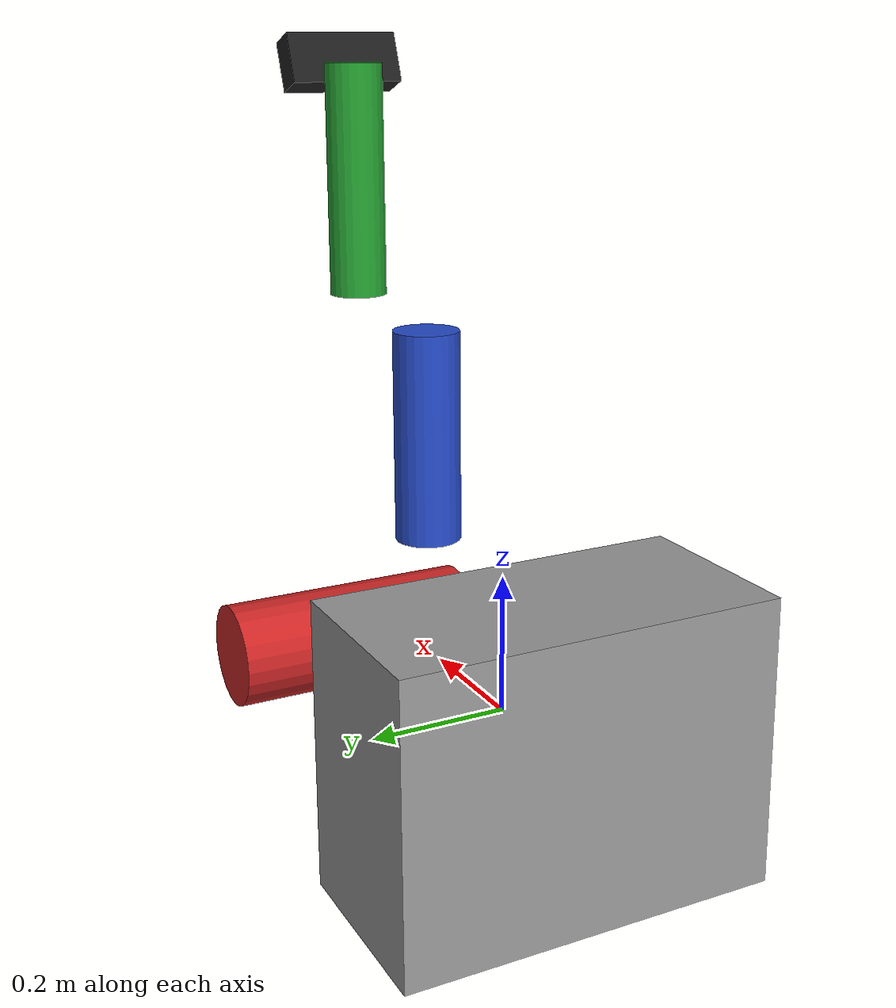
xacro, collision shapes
<?xml version="1.0"?>
<robot xmlns:xacro="http://www.ros.org/wiki/xacro" name="MROV">
    <xacro:arg name="initial_positions_file" default="initial_positions.yaml" />

    <!-- Import MROV urdf file -->
    <xacro:include filename="$(find roboforge_description)/urdf/MROV.urdf" />

    <!-- Import control_xacro -->
    <xacro:include filename="MROV.ros2_control.xacro" />

    <xacro:MROV_ros2_control name="FakeSystem" initial_positions_file="$(arg initial_positions_file)"/>

</robot>

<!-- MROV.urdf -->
<robot name="MROV">

  <link name="world"/>

  <joint name="world_to_base" type="fixed">
    <parent link="world"/>
    <child link="Base_Link"/>
    <origin xyz="0 0 0" rpy="1.5708 0 1.5708"/>
  </joint>

  <link name="Base_Link">
    <inertial>
      <origin xyz="0.0001356345924423959 -0.0027958209988345442 -0.17742579705845535" rpy="0 0 0"/>
      <mass value="73.72720579216754"/>
      <inertia ixx="6.080008408618806" iyy="7.448494266859929" izz="2.421318329739703"
               ixy="0.0004522836114217125" iyz="-0.19161922081135851" ixz="0.0002600319584258763"/>
    </inertial>
   <visual name="Base_Link_visual">
  <origin xyz="0 0 0" rpy="0 0 0"/>
  <geometry>
    <mesh filename="file:///home/instillmotion/roboforge_ws/src/roboforge_description/meshes/Base_Link.stl" scale="0.001 0.001 0.001"/>
  </geometry>
</visual>
    <collision name="Base_Link_collision">
      <origin xyz="0 0 -0.12" rpy="0 0 0"/>
      <geometry>
        <box size="0.55 0.42 0.28"/>
      </geometry>
    </collision>
  </link>

  <link name="Link_1">
    <inertial>
      <origin xyz="0.18608299280563856 -0.09930637280922637 0.000140804150153393" rpy="0 0 0"/>
      <mass value="14.482580124533875"/>
      <inertia ixx="0.031605126792847216" iyy="0.2299436371920638" izz="0.2445269438456591"
               ixy="0.0320391397033634" iyz="2.4257608514779982e-05" ixz="-0.0001090383327939648"/>
    </inertial>
    <visual name="Link_1_visual">
      <origin xyz="1.7308998350243355e-09 0.08224999771294594 0.13000000163195125"
              rpy="3.1415926535897927 4.705543112124352e-16 1.2374103657084265e-15"/>
      <geometry>

far from the base

        <mesh filename="file:///home/instillmotion/roboforge_ws/src/roboforge_description/meshes/Link_1.stl" scale="0.001 0.001 0.001"/>
      </geometry>
    </visual>
    <collision name="Link_1_collision">
      <origin xyz="0.18 -0.02 0.0" rpy="0 1.5708 0"/>
      <geometry>
        <cylinder radius="0.07" length="0.34"/>
      </geometry>
    </collision>
  </link>

  <link name="Link_2">
    <inertial>
      <origin xyz="0.15291121542347832 0.10745667780920695 0.05028337243925731" rpy="0 0 0"/>
      <mass value="4.795520335939489"/>
      <inertia ixx="0.0661479704368495" iyy="0.0987819411507154" izz="0.1373437951340477"
               ixy="-0.058616699505220804" iyz="0.0003083336265996855" ixz="0.0004530731777151773"/>
    </inertial>
    <visual name="Link_2_visual">
      <origin xyz="-0.19324999771294718 -0.13000000163195025 0.050000001730899905"
              rpy="-1.5707963267948972 -1.570796326794893 0"/>
      <geometry>
        <mesh filename="file:///home/instillmotion/roboforge_ws/src/roboforge_description/meshes/Link_2.stl" scale="0.001 0.001 0.001"/>
      </geometry>
    </visual>
    <collision name="Link_2_collision">

far from the base

      <origin xyz="0.15 0.11 0.05" rpy="0 1.5708 0"/>
      <geometry>
        <cylinder radius="0.05" length="0.32"/>
      </geometry>
    </collision>
  </link>

  <link name="Link_3">
    <inertial>
      <origin xyz="0.21478168798956143 0.08096195232708539 0.05800376599428704" rpy="0 0 0"/>
      <mass value="5.960058511721182"/>
      <inertia ixx="0.013665487899860107" iyy="0.04778278915543899" izz="0.052848731805561044"
               ixy="-0.015155801039595795" iyz="-4.1452007907544046e-08" ixz="-1.0152361179722894e-07"/>
    </inertial>
    <visual name="Link_3_visual">
      <origin xyz="-0.4884264877129772 -0.4161745016319071 0.05800000173089491"
              rpy="-1.5707963267948972 -1.57079632679477 0"/>
      <geometry>
        <mesh filename="file:///home/instillmotion/roboforge_ws/src/roboforge_description/meshes/Link_3.stl" scale="0.001 0.001 0.001"/>
      </geometry>
    </visual>
    <collision name="Link_3_collision">
      <origin xyz="0.21 0.08 0.058" rpy="0 1.5708 0"/>
      <geometry>
        <cylinder radius="0.045" length="0.36"/>
      </geometry>
    </collision>
  </link>

  <link name="Link_4">
    <inertial>
      <origin xyz="0.001587676837711417 0.07007455299123663 -0.013540153217061146" rpy="0 0 0"/>
      <mass value="0.7115348170256092"/>
      <inertia ixx="0.002016753973613117" iyy="0.00047510558923077173" izz="0.002089634028742328"
               ixy="-9.866272179652854e-05" iyz="0.00038810256430279273" ixz="-8.219098690177765e-06"/>
    </inertial>
    <visual name="Link_4_visual">
      <origin xyz="1.7309060562631373e-09 -0.948946743359802 -0.21681783919339118"
              rpy="-0.3610242625979725 1.0823375344026993e-13 -1.1411217809271123e-16"/>
      <geometry>
        <mesh filename="file:///home/instillmotion/roboforge_ws/src/roboforge_description/meshes/Link_4.stl" scale="0.001 0.001 0.001"/>
      </geometry>
    </visual>
    <collision name="Link_4_collision">
      <origin xyz="0.0 0.07 -0.01" rpy="0 0 0"/>
      <geometry>
        <box size="0.18 0.08 0.05"/>
      </geometry>
    </collision>
  </link>

  <joint name="Base_Link_Revolute-11" type="revolute">
    <origin xyz="-1.7308990302514204e-09 0.08399999771294589 0.1300000016319511"
            rpy="3.141592653589793 4.705543112124359e-16 1.2374103657084236e-15"/>
    <parent link="Base_Link"/>
    <child link="Link_1"/>
    <axis xyz="1.3738014789193181e-31 -1.0 0.0"/>
    <limit lower="-3.141593" upper="3.141593" effort="1000000" velocity="1000000"/>
  </joint>

  <joint name="Link_1_Revolute-12" type="revolute">
    <origin xyz="-0.0506 -0.11100000000000002 0.0"
            rpy="-1.5707963267948952 1.232595164407831e-32 -1.5707963267948966"/>
    <parent link="Link_1"/>
    <child link="Link_2"/>
    <axis xyz="-4.373750508443129e-32 1.38365925427228e-15 1.0"/>
    <limit lower="-1.48353" upper="0.349066" effort="1000000" velocity="1000000"/>
  </joint>

  <joint name="Link_2_Revolute-13" type="revolute">
    <origin xyz="0.29517649 0.2861745 -0.009800000000000387"
            rpy="6.873988984094902e-14 4.7773350948379134e-31 -6.6102039147322185e-46"/>
    <parent link="Link_2"/>
    <child link="Link_3"/>
    <axis xyz="-5.214710145682226e-31 7.01235490952213e-14 1.0"/>
    <limit lower="-1.396263" upper="1.570796" effort="1000000" velocity="1000000"/>
  </joint>

  <joint name="Link_3_Revolute-8" type="revolute">
    <origin xyz="0.32042091000000683 0.120982180000004 0.05799999999999152"
            rpy="-1.2097720641969247 -1.5707963267947587 0"/>
    <parent link="Link_3"/>
    <child link="Link_4"/>
    <axis xyz="4.87854907085075e-31 -1.0000005797923204 -1.5260432667529855e-07"/>
    <limit lower="-3.141593" upper="3.141593" effort="1000000" velocity="1000000"/>
  </joint>

  <gazebo reference="Base_Link">
    <material>Gazebo/Grey</material>
  </gazebo>

  <gazebo reference="Link_1">
    <material>Gazebo/Red</material>
  </gazebo>

  <gazebo reference="Link_2">
    <material>Gazebo/Blue</material>
  </gazebo>

  <gazebo reference="Link_3">
    <material>Gazebo/Green</material>
  </gazebo>

  <gazebo reference="Link_4">
    <material>Gazebo/Black</material>
  </gazebo>
  <ros2_control name="GazeboSystem" type="system">
    <hardware>
      <plugin>gazebo_ros2_control/GazeboSystem</plugin>
    </hardware>

    <joint name="Base_Link_Revolute-11">
      <command_interface name="position"/>
      <state_interface name="position"/>
      <state_interface name="velocity"/>
    </joint>

    <joint name="Link_1_Revolute-12">
      <command_interface name="position"/>
      <state_interface name="position"/>
      <state_interface name="velocity"/>
    </joint>

    <joint name="Link_2_Revolute-13">
      <command_interface name="position"/>
      <state_interface name="position"/>
      <state_interface name="velocity"/>
    </joint>

    <joint name="Link_3_Revolute-8">
      <command_interface name="position"/>
      <state_interface name="position"/>
      <state_interface name="velocity"/>
    </joint>
  </ros2_control>

  <gazebo>
  <plugin name="gazebo_ros2_control" filename="libgazebo_ros2_control.so">
    <parameters>/home/instillmotion/roboforge_ws/src/roboforge_description/config/controllers.yaml</parameters>
  </plugin>
</gazebo>

</robot>
